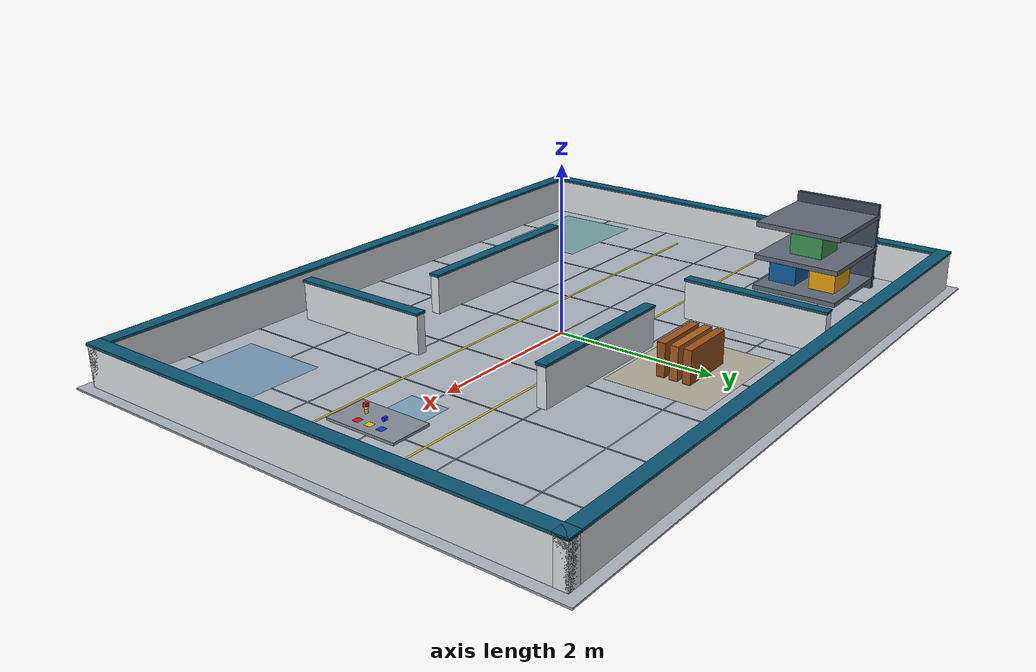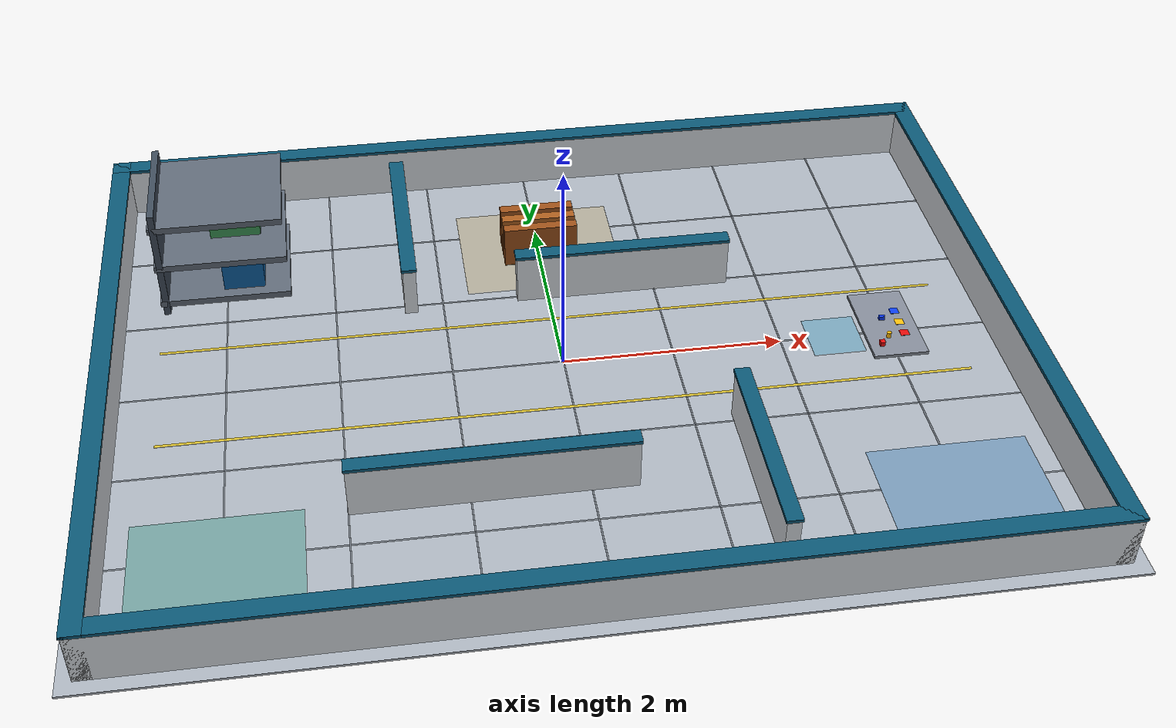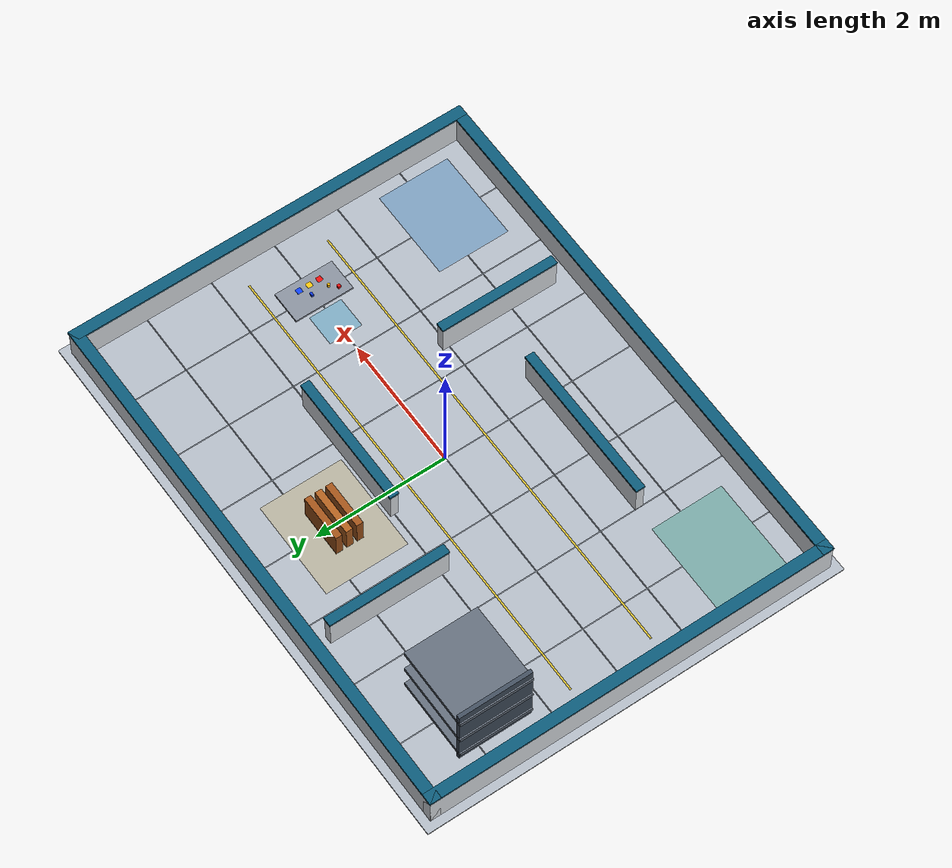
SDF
<sdf version="1.9">
 <world name="rebotarm_lab">
  <physics name="1ms" type="ignored">
   <max_step_size>0.001</max_step_size>
   <real_time_factor>1.0</real_time_factor>
  </physics>
  <plugin filename="gz-sim-physics-system" name="gz::sim::systems::Physics"/>
  <plugin filename="gz-sim-user-commands-system" name="gz::sim::systems::UserCommands"/>
  <plugin filename="gz-sim-scene-broadcaster-system" name="gz::sim::systems::SceneBroadcaster"/>
  <plugin filename="gz-sim-sensors-system" name="gz::sim::systems::Sensors">
   <render_engine>ogre2</render_engine>
  </plugin>
  <plugin filename="gz-sim-imu-system" name="gz::sim::systems::Imu"/>
  <scene>
   <ambient>0.52 0.55 0.60 1</ambient>
   <background>0.42 0.56 0.70 1</background>
   <shadows>true</shadows>
   <grid>false</grid>
  </scene>
  <light name="sun" type="directional">
   <pose>0 0 8 0 0 0</pose>
   <diffuse>0.9 0.9 0.88 1</diffuse>
   <specular>0.25 0.25 0.25 1</specular>
   <direction>-0.45 0.2 -0.87</direction>
  </light>
  <light name="workcell_light" type="point">
   <pose>2.8 0 2.8 0 0 0</pose>
   <cast_shadows>false</cast_shadows>
   <diffuse>0.72 0.78 0.88 1</diffuse>
   <specular>0.12 0.12 0.12 1</specular>
   <attenuation>
    <range>8</range>
    <constant>0.6</constant>
    <linear>0.04</linear>
    <quadratic>0.01</quadratic>
   </attenuation>
  </light>
  <light name="storage_light" type="point">
   <pose>-2.8 1.7 2.6 0 0 0</pose>
   <cast_shadows>false</cast_shadows>
   <diffuse>0.70 0.76 0.84 1</diffuse>
   <specular>0.10 0.10 0.10 1</specular>
   <attenuation>
    <range>7</range>
    <constant>0.6</constant>
    <linear>0.04</linear>
    <quadratic>0.01</quadratic>
   </attenuation>
  </light>
  <model name="floor">
   <static>true</static>
   <link name="floor_link">
    <collision name="collision">
     <geometry><box><size>8.4 6.4 0.02</size></box></geometry>
     <pose>0 0 -0.01 0 0 0</pose>
    </collision>
    <visual name="visual">
     <geometry><box><size>8.4 6.4 0.02</size></box></geometry>
     <pose>0 0 -0.01 0 0 0</pose>
     <material>
      <ambient>0.50 0.53 0.57 1</ambient>
      <diffuse>0.68 0.71 0.75 1</diffuse>
      <specular>0.08 0.08 0.08 1</specular>
     </material>
    </visual>
   </link>
  </model>
  <model name="floor_grid">
   <static>true</static>
   <link name="grid">
    <visual name="x_n2">
     <pose>0 -2 0.002 0 0 0</pose>
     <geometry><box><size>7.85 0.012 0.004</size></box></geometry>
     <material><ambient>0.31 0.35 0.39 0.45</ambient><diffuse>0.31 0.35 0.39 0.45</diffuse></material>
    </visual>
    <visual name="x_n1">
     <pose>0 -1 0.002 0 0 0</pose>
     <geometry><box><size>7.85 0.012 0.004</size></box></geometry>
     <material><ambient>0.31 0.35 0.39 0.45</ambient><diffuse>0.31 0.35 0.39 0.45</diffuse></material>
    </visual>
    <visual name="x_0">
     <pose>0 0 0.002 0 0 0</pose>
     <geometry><box><size>7.85 0.012 0.004</size></box></geometry>
     <material><ambient>0.31 0.35 0.39 0.45</ambient><diffuse>0.31 0.35 0.39 0.45</diffuse></material>
    </visual>
    <visual name="x_p1">
     <pose>0 1 0.002 0 0 0</pose>
     <geometry><box><size>7.85 0.012 0.004</size></box></geometry>
     <material><ambient>0.31 0.35 0.39 0.45</ambient><diffuse>0.31 0.35 0.39 0.45</diffuse></material>
    </visual>
    <visual name="x_p2">
     <pose>0 2 0.002 0 0 0</pose>
     <geometry><box><size>7.85 0.012 0.004</size></box></geometry>
     <material><ambient>0.31 0.35 0.39 0.45</ambient><diffuse>0.31 0.35 0.39 0.45</diffuse></material>
    </visual>
    <visual name="y_n3">
     <pose>-3 0 0.002 0 0 0</pose>
     <geometry><box><size>0.012 5.85 0.004</size></box></geometry>
     <material><ambient>0.31 0.35 0.39 0.45</ambient><diffuse>0.31 0.35 0.39 0.45</diffuse></material>
    </visual>
    <visual name="y_n2">
     <pose>-2 0 0.002 0 0 0</pose>
     <geometry><box><size>0.012 5.85 0.004</size></box></geometry>
     <material><ambient>0.31 0.35 0.39 0.45</ambient><diffuse>0.31 0.35 0.39 0.45</diffuse></material>
    </visual>
    <visual name="y_n1">
     <pose>-1 0 0.002 0 0 0</pose>
     <geometry><box><size>0.012 5.85 0.004</size></box></geometry>
     <material><ambient>0.31 0.35 0.39 0.45</ambient><diffuse>0.31 0.35 0.39 0.45</diffuse></material>
    </visual>
    <visual name="y_0">
     <pose>0 0 0.002 0 0 0</pose>
     <geometry><box><size>0.012 5.85 0.004</size></box></geometry>
     <material><ambient>0.31 0.35 0.39 0.45</ambient><diffuse>0.31 0.35 0.39 0.45</diffuse></material>
    </visual>
    <visual name="y_p1">
     <pose>1 0 0.002 0 0 0</pose>
     <geometry><box><size>0.012 5.85 0.004</size></box></geometry>
     <material><ambient>0.31 0.35 0.39 0.45</ambient><diffuse>0.31 0.35 0.39 0.45</diffuse></material>
    </visual>
    <visual name="y_p2">
     <pose>2 0 0.002 0 0 0</pose>
     <geometry><box><size>0.012 5.85 0.004</size></box></geometry>
     <material><ambient>0.31 0.35 0.39 0.45</ambient><diffuse>0.31 0.35 0.39 0.45</diffuse></material>
    </visual>
    <visual name="y_p3">
     <pose>3 0 0.002 0 0 0</pose>
     <geometry><box><size>0.012 5.85 0.004</size></box></geometry>
     <material><ambient>0.31 0.35 0.39 0.45</ambient><diffuse>0.31 0.35 0.39 0.45</diffuse></material>
    </visual>
   </link>
  </model>
  <model name="boundary_walls">
   <static>true</static>
   <link name="walls">
    <collision name="west_collision">
     <pose>-4 0 0.24 0 0 0</pose>
     <geometry><box><size>0.15 6.15 0.48</size></box></geometry>
    </collision>
    <collision name="east_collision">
     <pose>4 0 0.24 0 0 0</pose>
     <geometry><box><size>0.15 6.15 0.48</size></box></geometry>
    </collision>
    <collision name="south_collision">
     <pose>0 -3 0.24 0 0 0</pose>
     <geometry><box><size>8.15 0.15 0.48</size></box></geometry>
    </collision>
    <collision name="north_collision">
     <pose>0 3 0.24 0 0 0</pose>
     <geometry><box><size>8.15 0.15 0.48</size></box></geometry>
    </collision>
    <visual name="west_visual">
     <pose>-4 0 0.24 0 0 0</pose>
     <geometry><box><size>0.15 6.15 0.48</size></box></geometry>
     <material><ambient>0.69 0.72 0.75 1</ambient><diffuse>0.88 0.90 0.92 1</diffuse></material>
    </visual>
    <visual name="east_visual">
     <pose>4 0 0.24 0 0 0</pose>
     <geometry><box><size>0.15 6.15 0.48</size></box></geometry>
     <material><ambient>0.69 0.72 0.75 1</ambient><diffuse>0.88 0.90 0.92 1</diffuse></material>
    </visual>
    <visual name="south_visual">
     <pose>0 -3 0.24 0 0 0</pose>
     <geometry><box><size>8.15 0.15 0.48</size></box></geometry>
     <material><ambient>0.69 0.72 0.75 1</ambient><diffuse>0.88 0.90 0.92 1</diffuse></material>
    </visual>
    <visual name="north_visual">
     <pose>0 3 0.24 0 0 0</pose>
     <geometry><box><size>8.15 0.15 0.48</size></box></geometry>
     <material><ambient>0.69 0.72 0.75 1</ambient><diffuse>0.88 0.90 0.92 1</diffuse></material>
    </visual>
    <visual name="west_cap">
     <pose>-4 0 0.485 0 0 0</pose>
     <geometry><box><size>0.17 6.17 0.03</size></box></geometry>
     <material><ambient>0.03 0.22 0.30 1</ambient><diffuse>0.04 0.34 0.46 1</diffuse></material>
    </visual>
    <visual name="east_cap">
     <pose>4 0 0.485 0 0 0</pose>
     <geometry><box><size>0.17 6.17 0.03</size></box></geometry>
     <material><ambient>0.03 0.22 0.30 1</ambient><diffuse>0.04 0.34 0.46 1</diffuse></material>
    </visual>
    <visual name="south_cap">
     <pose>0 -3 0.485 0 0 0</pose>
     <geometry><box><size>8.17 0.17 0.03</size></box></geometry>
     <material><ambient>0.03 0.22 0.30 1</ambient><diffuse>0.04 0.34 0.46 1</diffuse></material>
    </visual>
    <visual name="north_cap">
     <pose>0 3 0.485 0 0 0</pose>
     <geometry><box><size>8.17 0.17 0.03</size></box></geometry>
     <material><ambient>0.03 0.22 0.30 1</ambient><diffuse>0.04 0.34 0.46 1</diffuse></material>
    </visual>
   </link>
  </model>
  <model name="interior_walls">
   <static>true</static>
   <link name="partitions">
    <collision name="storage_partition">
     <pose>-1.30 1.80 0.24 0 0 0</pose>
     <geometry><box><size>0.12 1.80 0.48</size></box></geometry>
    </collision>
    <collision name="north_partition">
     <pose>0.70 1.00 0.24 0 0 0</pose>
     <geometry><box><size>2.00 0.12 0.48</size></box></geometry>
    </collision>
    <collision name="south_partition">
     <pose>-0.80 -1.60 0.24 0 0 0</pose>
     <geometry><box><size>2.40 0.12 0.48</size></box></geometry>
    </collision>
    <collision name="delivery_partition">
     <pose>1.40 -1.80 0.24 0 0 0</pose>
     <geometry><box><size>0.12 1.80 0.48</size></box></geometry>
    </collision>
    <visual name="storage_wall">
     <pose>-1.30 1.80 0.24 0 0 0</pose>
     <geometry><box><size>0.12 1.80 0.48</size></box></geometry>
     <material><ambient>0.69 0.72 0.75 1</ambient><diffuse>0.88 0.90 0.92 1</diffuse></material>
    </visual>
    <visual name="north_wall">
     <pose>0.70 1.00 0.24 0 0 0</pose>
     <geometry><box><size>2.00 0.12 0.48</size></box></geometry>
     <material><ambient>0.69 0.72 0.75 1</ambient><diffuse>0.88 0.90 0.92 1</diffuse></material>
    </visual>
    <visual name="south_wall">
     <pose>-0.80 -1.60 0.24 0 0 0</pose>
     <geometry><box><size>2.40 0.12 0.48</size></box></geometry>
     <material><ambient>0.69 0.72 0.75 1</ambient><diffuse>0.88 0.90 0.92 1</diffuse></material>
    </visual>
    <visual name="delivery_wall">
     <pose>1.40 -1.80 0.24 0 0 0</pose>
     <geometry><box><size>0.12 1.80 0.48</size></box></geometry>
     <material><ambient>0.69 0.72 0.75 1</ambient><diffuse>0.88 0.90 0.92 1</diffuse></material>
    </visual>
    <visual name="storage_cap">
     <pose>-1.30 1.80 0.485 0 0 0</pose>
     <geometry><box><size>0.14 1.82 0.03</size></box></geometry>
     <material><ambient>0.03 0.22 0.30 1</ambient><diffuse>0.04 0.34 0.46 1</diffuse></material>
    </visual>
    <visual name="north_cap">
     <pose>0.70 1.00 0.485 0 0 0</pose>
     <geometry><box><size>2.02 0.14 0.03</size></box></geometry>
     <material><ambient>0.03 0.22 0.30 1</ambient><diffuse>0.04 0.34 0.46 1</diffuse></material>
    </visual>
    <visual name="south_cap">
     <pose>-0.80 -1.60 0.485 0 0 0</pose>
     <geometry><box><size>2.42 0.14 0.03</size></box></geometry>
     <material><ambient>0.03 0.22 0.30 1</ambient><diffuse>0.04 0.34 0.46 1</diffuse></material>
    </visual>
    <visual name="delivery_cap">
     <pose>1.40 -1.80 0.485 0 0 0</pose>
     <geometry><box><size>0.14 1.82 0.03</size></box></geometry>
     <material><ambient>0.03 0.22 0.30 1</ambient><diffuse>0.04 0.34 0.46 1</diffuse></material>
    </visual>
   </link>
  </model>
  <model name="storage_rack">
   <static>true</static>
   <pose>-3.0 1.75 0 0 0 0</pose>
   <link name="rack">
    <collision name="footprint">
     <pose>0 0 0.55 0 0 0</pose>
     <geometry><box><size>1.2 1.1 1.1</size></box></geometry>
    </collision>
    <visual name="back">
     <pose>-0.55 0 0.55 0 0 0</pose>
     <geometry><box><size>0.06 1.1 1.1</size></box></geometry>
     <material><ambient>0.18 0.22 0.27 1</ambient><diffuse>0.25 0.30 0.36 1</diffuse></material>
    </visual>
    <visual name="shelf_low">
     <pose>0 0 0.12 0 0 0</pose>
     <geometry><box><size>1.2 1.1 0.06</size></box></geometry>
     <material><ambient>0.26 0.30 0.34 1</ambient><diffuse>0.38 0.42 0.47 1</diffuse></material>
    </visual>
    <visual name="shelf_mid">
     <pose>0 0 0.52 0 0 0</pose>
     <geometry><box><size>1.2 1.1 0.06</size></box></geometry>
     <material><ambient>0.26 0.30 0.34 1</ambient><diffuse>0.38 0.42 0.47 1</diffuse></material>
    </visual>
    <visual name="shelf_top">
     <pose>0 0 0.94 0 0 0</pose>
     <geometry><box><size>1.2 1.1 0.06</size></box></geometry>
     <material><ambient>0.26 0.30 0.34 1</ambient><diffuse>0.38 0.42 0.47 1</diffuse></material>
    </visual>
    <visual name="crate_blue">
     <pose>0.18 -0.27 0.30 0 0 0</pose>
     <geometry><box><size>0.38 0.36 0.28</size></box></geometry>
     <material><ambient>0.04 0.24 0.42 1</ambient><diffuse>0.05 0.38 0.64 1</diffuse></material>
    </visual>
    <visual name="crate_yellow">
     <pose>0.12 0.25 0.30 0 0 0</pose>
     <geometry><box><size>0.44 0.34 0.28</size></box></geometry>
     <material><ambient>0.66 0.43 0.02 1</ambient><diffuse>0.94 0.66 0.04 1</diffuse></material>
    </visual>
    <visual name="crate_green">
     <pose>0.14 0.02 0.72 0 0 0</pose>
     <geometry><box><size>0.46 0.42 0.30</size></box></geometry>
     <material><ambient>0.16 0.40 0.24 1</ambient><diffuse>0.24 0.60 0.34 1</diffuse></material>
    </visual>
   </link>
  </model>
  <model name="task_zone_markers">
   <static>true</static>
   <link name="markers">
    <visual name="charging">
     <pose>-3.05 -2.10 0.003 0 0 0</pose>
     <geometry><box><size>1.4 1.1 0.005</size></box></geometry>
     <material><ambient>0.03 0.28 0.24 0.32</ambient><diffuse>0.04 0.52 0.42 0.32</diffuse></material>
    </visual>
    <visual name="delivery">
     <pose>3.05 -2.10 0.003 0 0 0</pose>
     <geometry><box><size>1.4 1.1 0.005</size></box></geometry>
     <material><ambient>0.06 0.25 0.43 0.32</ambient><diffuse>0.08 0.42 0.70 0.32</diffuse></material>
    </visual>
    <visual name="dynamic_zone">
     <pose>0 1.73 0.003 0 0 0</pose>
     <geometry><box><size>1.5 1.25 0.005</size></box></geometry>
     <material><ambient>0.44 0.30 0.03 0.18</ambient><diffuse>0.78 0.56 0.05 0.18</diffuse></material>
    </visual>
    <visual name="lane_left">
     <pose>0 -0.62 0.004 0 0 0</pose>
     <geometry><box><size>7.2 0.025 0.006</size></box></geometry>
     <material><ambient>0.80 0.68 0.08 0.8</ambient><diffuse>0.96 0.82 0.10 0.8</diffuse></material>
    </visual>
    <visual name="lane_right">
     <pose>0 0.62 0.004 0 0 0</pose>
     <geometry><box><size>7.2 0.025 0.006</size></box></geometry>
     <material><ambient>0.80 0.68 0.08 0.8</ambient><diffuse>0.96 0.82 0.10 0.8</diffuse></material>
    </visual>
    <visual name="workcell_dock">
     <pose>2.50 0 0.004 0 0 0</pose>
     <geometry><box><size>0.48 0.50 0.006</size></box></geometry>
     <material><ambient>0.04 0.32 0.46 0.30</ambient><diffuse>0.05 0.54 0.74 0.30</diffuse></material>
    </visual>
   </link>
  </model>
  <model name="dynamic_pallet">
   <pose>0 1.72 0.20 0 0 0</pose>
   <link name="body">
    <inertial><mass>12</mass><inertia><ixx>0.20</ixx><iyy>0.52</iyy><izz>0.64</izz></inertia></inertial>
    <collision name="collision"><geometry><box><size>0.70 0.45 0.40</size></box></geometry></collision>
    <visual name="slat_left">
     <pose>0 0.16 0 0 0 0</pose>
     <geometry><box><size>0.70 0.10 0.40</size></box></geometry>
     <material><ambient>0.38 0.19 0.06 1</ambient><diffuse>0.62 0.32 0.10 1</diffuse></material>
    </visual>
    <visual name="slat_center">
     <geometry><box><size>0.70 0.10 0.40</size></box></geometry>
     <material><ambient>0.42 0.22 0.07 1</ambient><diffuse>0.68 0.37 0.12 1</diffuse></material>
    </visual>
    <visual name="slat_right">
     <pose>0 -0.16 0 0 0 0</pose>
     <geometry><box><size>0.70 0.10 0.40</size></box></geometry>
     <material><ambient>0.38 0.19 0.06 1</ambient><diffuse>0.62 0.32 0.10 1</diffuse></material>
    </visual>
   </link>
  </model>
  <include><uri>model://rebotarm_workcell</uri><name>workcell</name><pose>3.0 0 0 0 0 0</pose></include>
  <include><uri>model://rebotarm_red_cube</uri><name>red_cube</name><pose>2.86 -0.30 0.10 0 0 0</pose></include>
  <include>
   <uri>model://rebotarm_blue_block</uri>
   <name>blue_block</name>
   <pose>2.96 0.06 0.10 0 0 0</pose>
  </include>
  <include>
   <uri>model://rebotarm_yellow_cylinder</uri>
   <name>yellow_cylinder</name>
   <pose>2.95 -0.20 0.10 0 0 0</pose>
  </include>
 </world>
</sdf>

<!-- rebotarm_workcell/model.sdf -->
<sdf version="1.9">
  <model name="rebotarm_workcell">
    <static>true</static>
    <link name="table">
      <collision name="table_collision">
        <pose>0 0 0.085 0 0 0</pose>
        <geometry><box><size>0.50 0.90 0.03</size></box></geometry>
      </collision>
      <visual name="table_visual">
        <pose>0 0 0.085 0 0 0</pose>
        <geometry><box><size>0.50 0.90 0.03</size></box></geometry>
        <material><ambient>0.42 0.45 0.50 1</ambient><diffuse>0.52 0.55 0.60 1</diffuse><specular>0.25 0.25 0.25 1</specular></material>
      </visual>
      <visual name="red_target">
        <pose>0.11 -0.16 0.101 0 0 0</pose>
        <geometry><box><size>0.08 0.08 0.002</size></box></geometry>
        <material><ambient>0.75 0.03 0.03 1</ambient><diffuse>0.9 0.05 0.05 1</diffuse></material>
      </visual>
      <visual name="yellow_target">
        <pose>0.11 0 0.101 0 0 0</pose>
        <geometry><box><size>0.08 0.08 0.002</size></box></geometry>
        <material><ambient>0.8 0.55 0.02 1</ambient><diffuse>1 0.75 0.05 1</diffuse></material>
      </visual>
      <visual name="blue_target">
        <pose>0.11 0.16 0.101 0 0 0</pose>
        <geometry><box><size>0.08 0.08 0.002</size></box></geometry>
        <material><ambient>0.03 0.12 0.75 1</ambient><diffuse>0.05 0.25 0.95 1</diffuse></material>
      </visual>
    </link>
  </model>
</sdf>

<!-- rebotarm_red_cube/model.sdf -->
<sdf version="1.9"><model name="rebotarm_red_cube"><link name="body">
  <inertial><mass>0.045</mass><inertia><ixx>0.00001519</ixx><iyy>0.00001519</iyy><izz>0.00001519</izz></inertia></inertial>
  <collision name="collision"><pose>0 0 0.0225 0 0 0</pose><geometry><box><size>0.045 0.045 0.045</size></box></geometry><surface><friction><ode><mu>2</mu><mu2>2</mu2></ode></friction></surface></collision>
  <visual name="visual"><pose>0 0 0.0225 0 0 0</pose><geometry><box><size>0.045 0.045 0.045</size></box></geometry><material><ambient>0.75 0.02 0.02 1</ambient><diffuse>0.95 0.04 0.04 1</diffuse></material></visual>
</link></model></sdf>

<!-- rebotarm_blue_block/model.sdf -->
<sdf version="1.9"><model name="rebotarm_blue_block"><link name="body">
  <inertial><mass>0.05</mass><inertia><ixx>0.00001028</ixx><iyy>0.00001728</iyy><izz>0.00001553</izz></inertia></inertial>
  <collision name="collision"><pose>0 0 0.019 0 0 0</pose><geometry><box><size>0.052 0.032 0.038</size></box></geometry><surface><friction><ode><mu>2</mu><mu2>2</mu2></ode></friction></surface></collision>
  <visual name="visual"><pose>0 0 0.019 0 0 0</pose><geometry><box><size>0.052 0.032 0.038</size></box></geometry><material><ambient>0.02 0.10 0.75 1</ambient><diffuse>0.04 0.22 0.95 1</diffuse></material></visual>
</link></model></sdf>

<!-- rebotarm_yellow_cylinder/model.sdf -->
<sdf version="1.9"><model name="rebotarm_yellow_cylinder"><link name="body">
  <inertial><mass>0.042</mass><inertia><ixx>0.00001366</ixx><iyy>0.00001366</iyy><izz>0.00000840</izz></inertia></inertial>
  <collision name="collision"><pose>0 0 0.026 0 0 0</pose><geometry><cylinder><radius>0.02</radius><length>0.052</length></cylinder></geometry><surface><friction><ode><mu>2</mu><mu2>2</mu2></ode></friction></surface></collision>
  <visual name="visual"><pose>0 0 0.026 0 0 0</pose><geometry><cylinder><radius>0.02</radius><length>0.052</length></cylinder></geometry><material><ambient>0.82 0.52 0.01 1</ambient><diffuse>1 0.72 0.03 1</diffuse></material></visual>
</link></model></sdf>
